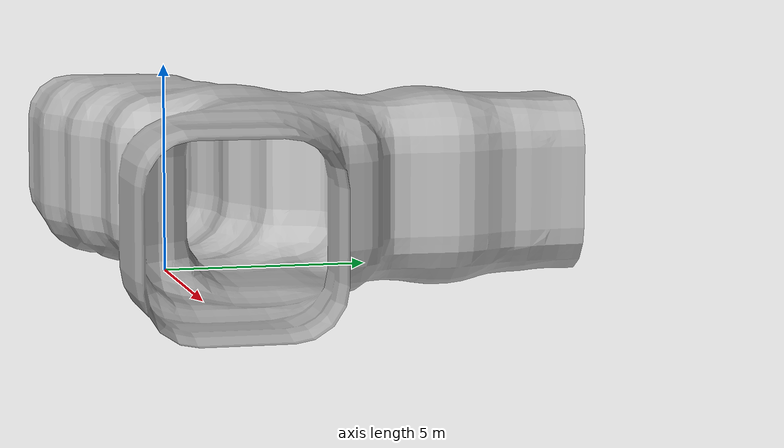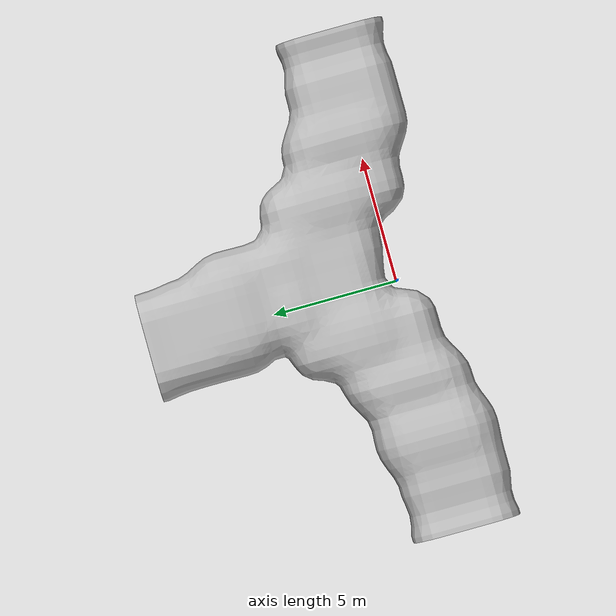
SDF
<?xml version="1.0"?>
<sdf version="1.6">
  <model name="cave_3way_20m">
    <static>true</static>
    <link name="base">
      <pose>0 0 0 0 0 0</pose>
      <collision name="base_collision">
        <pose>0 0 0 0 0 0</pose>
        <geometry>
          <mesh>
            <uri>model://cave_3way_20m/meshes/cave_3way_20m.dae</uri>
          </mesh>
        </geometry>
        <surface>
          <contact>
             <collide_bitmask>0xffff</collide_bitmask>
          </contact>
          <friction>
            <ode>
              <mu>100</mu>
              <mu2>50</mu2>
            </ode>
          </friction>
        </surface>
      </collision>
      <visual name="base_visual">
        <cast_shadows>false</cast_shadows>
        <pose>0 0 0 0 0 0</pose>
        <geometry>
          <mesh>
            <uri>model://cave_3way_20m/meshes/cave_3way_20m.dae</uri>
          </mesh>
        </geometry>
      </visual>
    </link>
  </model>
</sdf>
